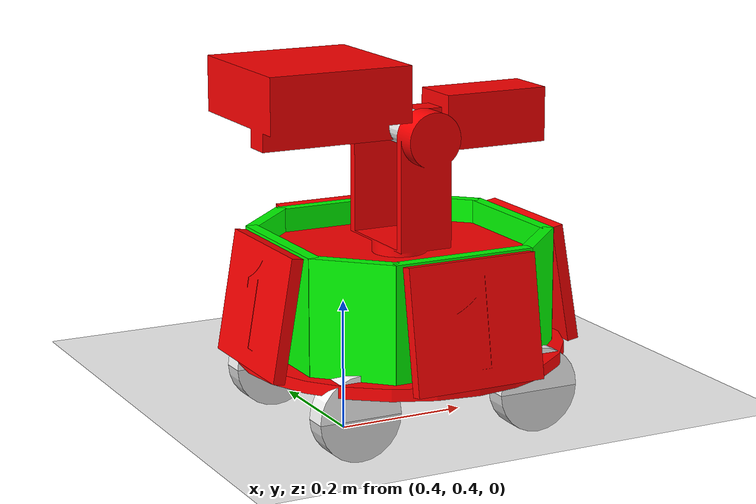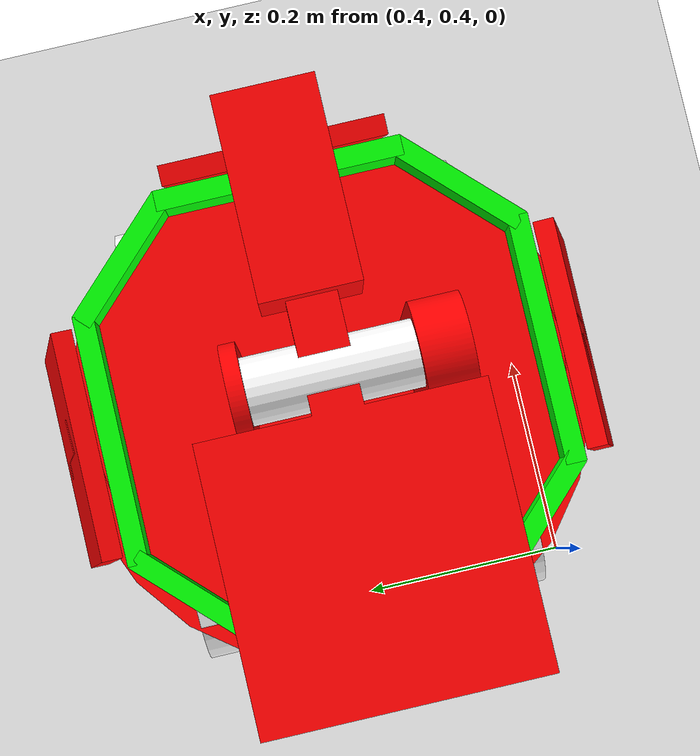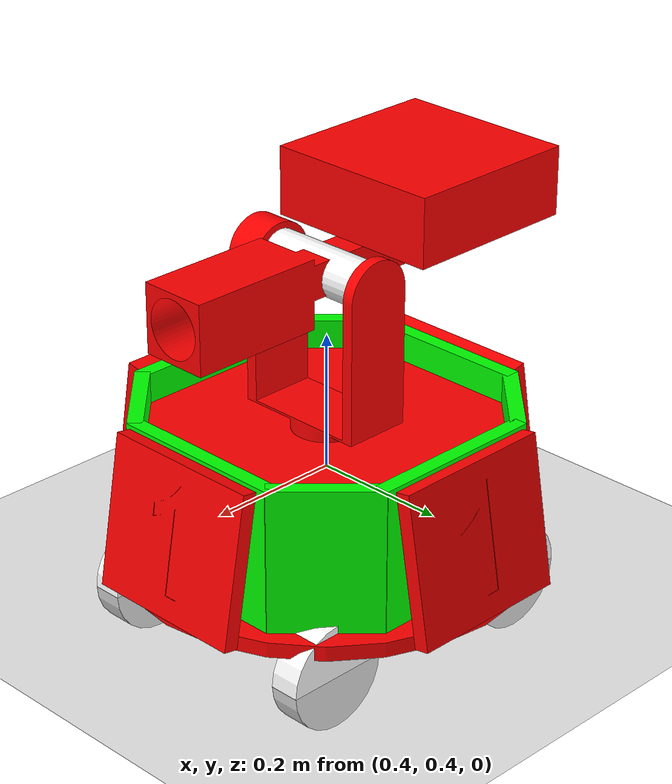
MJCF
<?xml version="1.0" encoding="utf-8"?>
<mujoco>
	<compiler angle="radian" coordinate="local" meshdir="A:\Documents\GitHub\Pulsar\environment\assets\stls" texturedir="A:\Documents\GitHub\Pulsar\environment\assets\texture"></compiler>
	<option timestep="0.005">
		<flag warmstart="enable"></flag>
	</option>
	<worldbody>
		<geom name="floor0" pos="5 5 0" size="5 5 1" type="plane" condim="3"></geom>
		<body name="floor0" pos="5 5 0"></body>
		<body name="agent0:robot" pos="0.6 0.6 0.15">
			<joint axis="1 0 0" damping="10" name="agent0:tx" pos="0 0 0" type="slide"></joint>
			<joint axis="0 1 0" damping="10" name="agent0:ty" pos="0 0 0" type="slide"></joint>
			<joint axis="0 0 1" damping="1" name="agent0:tz" pos="0 0 0" type="slide"></joint>
			<joint axis="0 0 1" damping="10" name="agent0:rz" pos="0 0 0" type="hinge"></joint>
			<body name="agent0:gimbal_yaw" pos="0 0 0">
				<geom name="agent0:agent" mass="1" pos="0 0 0.05" mesh="agent0:gimbal_yaw" rgba="1 0 0 1" type="mesh" euler="1.57 0 0"></geom>
			</body>
			<body name="agent0:gimbal_pitch" pos="-0.1 0 0.25">
				<geom name="agent0:connector" mass="1" pos="0.1 0 0.02" rgba="1 1 1 1" size="0.03 0.08" type="cylinder" euler="1.57 0 0"></geom>
				<geom name="agent0:gimbal_pitch" mass="1" pos="0 0 0" mesh="agent0:gimbal_pitch" rgba="1 0 0 1" type="mesh" euler="1.57 0 0"></geom>
				<geom name="agent0:barrel_head_geom" mass="0" pos="0.3 0 0" rgba="1 1 1 1" size="0.001 0.001 0.001" type="box" euler="0 0 0"></geom>
				<body name="agent0:barrel_head" pos="0.4 0 0"></body>
			</body>
			<body name="agent0:chassis" pos="0 0 0">
				<geom name="agent0:wheel1" mass="1" pos="0.16 0.16 -0.15" rgba="1 1 1 1" size="0.07 0.02" type="cylinder" condim="1" euler="1.57 0 0"></geom>
				<geom name="agent0:wheel2" mass="1" pos="-0.16 -0.16 -0.15" rgba="1 1 1 1" size="0.07 0.02" type="cylinder" condim="1" euler="1.57 0 0"></geom>
				<geom name="agent0:wheel3" mass="1" pos="-0.16 0.16 -0.15" rgba="1 1 1 1" size="0.07 0.02" type="cylinder" condim="1" euler="1.57 0 0"></geom>
				<geom name="agent0:wheel4" mass="1" pos="0.16 -0.16 -0.15" rgba="1 1 1 1" size="0.07 0.02" type="cylinder" condim="1" euler="1.57 0 0"></geom>
				<geom name="agent0:body_bot" mass="1" pos="0 0 -0.1" rgba="1 0 0 1" size="0.27 0.01" type="cylinder" euler="0 0 0"></geom>
				<geom name="agent0:armor1" mesh="agent0:num1" mass="0.1" pos="0.25 0 0" rgba="1 0 0 1" type="mesh" euler="0 -0.174 -1.57"></geom>
				<geom name="agent0:armor1_shield" mass="0" pos="0.21 0 0" rgba="0 1 0 1" size="0.01 0.12 0.1" type="box" euler="0 0 0"></geom>
				<geom name="agent0:armor_gap1" mass="0" pos="0.163 0.163 0" rgba="0 1 0 1" size="0.01 0.07 0.1" type="box" euler="0 0 0.785"></geom>
				<geom name="agent0:armor2" mesh="agent0:num1" mass="0.1" pos="-0.25 0 0" rgba="1 0 0 1" type="mesh" euler="0 0.174 1.57"></geom>
				<geom name="agent0:armor2_shield" mass="0" pos="-0.21 0 0" rgba="0 1 0 1" size="0.01 0.12 0.1" type="box" euler="0 0 0"></geom>
				<geom name="agent0:armor_gap2" mass="0" pos="-0.163 -0.163 0" rgba="0 1 0 1" size="0.01 0.07 0.1" type="box" euler="0 0 0.785"></geom>
				<geom name="agent0:armor3" mesh="agent0:num1" mass="0.1" pos="0 0.25 0" rgba="1 0 0 1" type="mesh" euler="0.174 0 0"></geom>
				<geom name="agent0:armor3_shield" mass="0" pos="0 0.21 0" rgba="0 1 0 1" size="0.01 0.12 0.1" type="box" euler="0 0 1.57"></geom>
				<geom name="agent0:armor_gap3" mass="0" pos="0.163 -0.163 0" rgba="0 1 0 1" size="0.01 0.07 0.1" type="box" euler="0 0 2.36"></geom>
				<geom name="agent0:armor4" mesh="agent0:num1" mass="0.1" pos="0 -0.25 0" rgba="1 0 0 1" type="mesh" euler="-0.174 0 3.14"></geom>
				<geom name="agent0:armor4_shield" mass="0" pos="0 -0.21 0" rgba="0 1 0 1" size="0.01 0.12 0.1" type="box" euler="0 0 1.57"></geom>
				<geom name="agent0:armor_gap4" mass="0" pos="-0.163 0.163 0" rgba="0 1 0 1" size="0.01 0.07 0.1" type="box" euler="0 0 2.36"></geom>
				<geom name="agent0:body_top" mass="1" pos="0 0 0.05" rgba="1 0 0 1" size="0.23 0.01" type="cylinder" euler="0 0 0"></geom>
			</body>
		</body>
		<body name="agent1:robot" pos="0.6 0.6 0.15">
			<joint axis="1 0 0" damping="10" name="agent1:tx" pos="0 0 0" type="slide"></joint>
			<joint axis="0 1 0" damping="10" name="agent1:ty" pos="0 0 0" type="slide"></joint>
			<joint axis="0 0 1" damping="1" name="agent1:tz" pos="0 0 0" type="slide"></joint>
			<joint axis="0 0 1" damping="10" name="agent1:rz" pos="0 0 0" type="hinge"></joint>
			<body name="agent1:gimbal_yaw" pos="0 0 0">
				<geom name="agent1:agent" mass="1" pos="0 0 0.05" mesh="agent1:gimbal_yaw" rgba="1 0 0 1" type="mesh" euler="1.57 0 0"></geom>
			</body>
			<body name="agent1:gimbal_pitch" pos="-0.1 0 0.25">
				<geom name="agent1:connector" mass="1" pos="0.1 0 0.02" rgba="1 1 1 1" size="0.03 0.08" type="cylinder" euler="1.57 0 0"></geom>
				<geom name="agent1:gimbal_pitch" mass="1" pos="0 0 0" mesh="agent1:gimbal_pitch" rgba="1 0 0 1" type="mesh" euler="1.57 0 0"></geom>
				<geom name="agent1:barrel_head_geom" mass="0" pos="0.3 0 0" rgba="1 1 1 1" size="0.001 0.001 0.001" type="box" euler="0 0 0"></geom>
				<body name="agent1:barrel_head" pos="0.4 0 0"></body>
			</body>
			<body name="agent1:chassis" pos="0 0 0">
				<geom name="agent1:wheel1" mass="1" pos="0.16 0.16 -0.15" rgba="1 1 1 1" size="0.07 0.02" type="cylinder" condim="1" euler="1.57 0 0"></geom>
				<geom name="agent1:wheel2" mass="1" pos="-0.16 -0.16 -0.15" rgba="1 1 1 1" size="0.07 0.02" type="cylinder" condim="1" euler="1.57 0 0"></geom>
				<geom name="agent1:wheel3" mass="1" pos="-0.16 0.16 -0.15" rgba="1 1 1 1" size="0.07 0.02" type="cylinder" condim="1" euler="1.57 0 0"></geom>
				<geom name="agent1:wheel4" mass="1" pos="0.16 -0.16 -0.15" rgba="1 1 1 1" size="0.07 0.02" type="cylinder" condim="1" euler="1.57 0 0"></geom>
				<geom name="agent1:body_bot" mass="1" pos="0 0 -0.1" rgba="1 0 0 1" size="0.27 0.01" type="cylinder" euler="0 0 0"></geom>
				<geom name="agent1:armor1" mesh="agent1:num1" mass="0.1" pos="0.25 0 0" rgba="1 0 0 1" type="mesh" euler="0 -0.174 -1.57"></geom>
				<geom name="agent1:armor1_shield" mass="0" pos="0.21 0 0" rgba="0 1 0 1" size="0.01 0.12 0.1" type="box" euler="0 0 0"></geom>
				<geom name="agent1:armor_gap1" mass="0" pos="0.163 0.163 0" rgba="0 1 0 1" size="0.01 0.07 0.1" type="box" euler="0 0 0.785"></geom>
				<geom name="agent1:armor2" mesh="agent1:num1" mass="0.1" pos="-0.25 0 0" rgba="1 0 0 1" type="mesh" euler="0 0.174 1.57"></geom>
				<geom name="agent1:armor2_shield" mass="0" pos="-0.21 0 0" rgba="0 1 0 1" size="0.01 0.12 0.1" type="box" euler="0 0 0"></geom>
				<geom name="agent1:armor_gap2" mass="0" pos="-0.163 -0.163 0" rgba="0 1 0 1" size="0.01 0.07 0.1" type="box" euler="0 0 0.785"></geom>
				<geom name="agent1:armor3" mesh="agent1:num1" mass="0.1" pos="0 0.25 0" rgba="1 0 0 1" type="mesh" euler="0.174 0 0"></geom>
				<geom name="agent1:armor3_shield" mass="0" pos="0 0.21 0" rgba="0 1 0 1" size="0.01 0.12 0.1" type="box" euler="0 0 1.57"></geom>
				<geom name="agent1:armor_gap3" mass="0" pos="0.163 -0.163 0" rgba="0 1 0 1" size="0.01 0.07 0.1" type="box" euler="0 0 2.36"></geom>
				<geom name="agent1:armor4" mesh="agent1:num1" mass="0.1" pos="0 -0.25 0" rgba="1 0 0 1" type="mesh" euler="-0.174 0 3.14"></geom>
				<geom name="agent1:armor4_shield" mass="0" pos="0 -0.21 0" rgba="0 1 0 1" size="0.01 0.12 0.1" type="box" euler="0 0 1.57"></geom>
				<geom name="agent1:armor_gap4" mass="0" pos="-0.163 0.163 0" rgba="0 1 0 1" size="0.01 0.07 0.1" type="box" euler="0 0 2.36"></geom>
				<geom name="agent1:body_top" mass="1" pos="0 0 0.05" rgba="1 0 0 1" size="0.23 0.01" type="cylinder" euler="0 0 0"></geom>
			</body>
		</body>
	</worldbody>
	<asset>
		<mesh name="agent0:num1" file="num1.stl" scale="0.01 0.01 0.01"></mesh>
		<mesh name="agent0:gimbal_yaw" file="gimbal_yaw.stl" scale="0.003 0.003 0.003"></mesh>
		<mesh name="agent0:gimbal_pitch" file="gimbal_pitch.stl" scale="0.003 0.003 0.003"></mesh>
		<mesh name="agent1:num1" file="num1.stl" scale="0.01 0.01 0.01"></mesh>
		<mesh name="agent1:gimbal_yaw" file="gimbal_yaw.stl" scale="0.003 0.003 0.003"></mesh>
		<mesh name="agent1:gimbal_pitch" file="gimbal_pitch.stl" scale="0.003 0.003 0.003"></mesh>
	</asset>
	<size nconmax="5000" njmax="5000"></size>
	<actuator>
		<motor name="agent0:motortx" ctrllimited="true" ctrlrange="-200 200" forcelimited="true" forcerange="-200 200" joint="agent0:tx"></motor>
		<motor name="agent0:motorty" ctrllimited="true" ctrlrange="-200 200" forcelimited="true" forcerange="-200 200" joint="agent0:ty"></motor>
		<motor name="agent0:motorrz" ctrllimited="true" ctrlrange="-150 150" forcelimited="true" forcerange="-100 100" joint="agent0:rz"></motor>
		<motor name="agent1:motortx" ctrllimited="true" ctrlrange="-200 200" forcelimited="true" forcerange="-200 200" joint="agent1:tx"></motor>
		<motor name="agent1:motorty" ctrllimited="true" ctrlrange="-200 200" forcelimited="true" forcerange="-200 200" joint="agent1:ty"></motor>
		<motor name="agent1:motorrz" ctrllimited="true" ctrlrange="-150 150" forcelimited="true" forcerange="-100 100" joint="agent1:rz"></motor>
	</actuator>
</mujoco>
